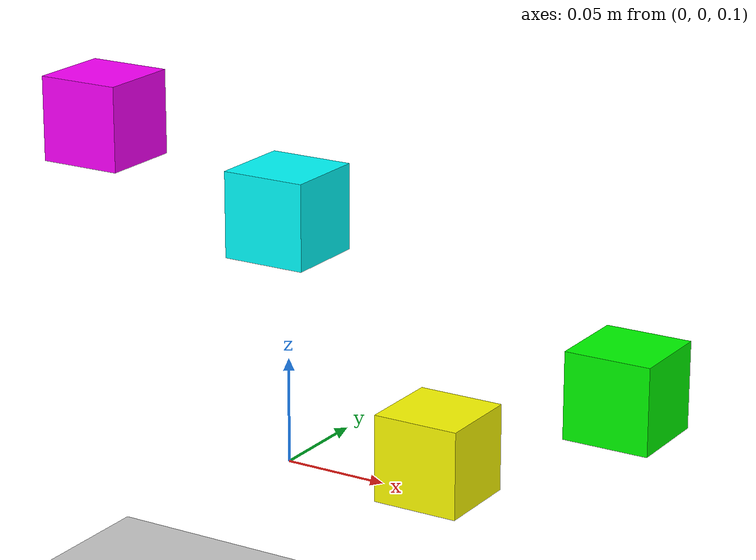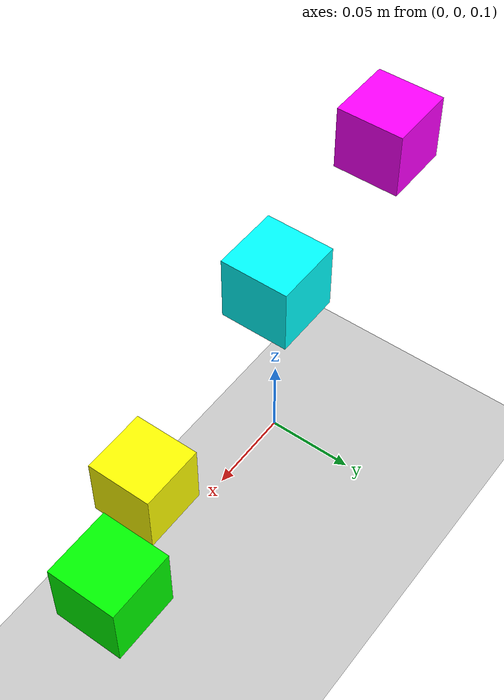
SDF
<?xml version="1.0" ?>

<sdf version="1.4">
  <world name="default">
    <include>
      <uri>model://ground_plane</uri>
    </include>

    <include>
      <uri>model://sun</uri>
    </include>

    <physics type="ode">
      <real_time_update_rate>1000.0</real_time_update_rate>
      <gravity>
  0.0 0.0 -9.81
      </gravity>
    </physics>

    <!-- x>0 to put on fore-fingers. y<0 to put on finger1. -->
    <model name="ball_yellow">
      <link name="link">
        <!-- z position is radius + thickness of ReFlex Hand, so ball can rest
               on top of fingers.
             +x is off-center towards fore-fingers
             +y is off-center towards finger 1 -->
        <pose>0.09 -0.02 0.13 0 0 0</pose>

        <collision name="ball_yellow_collision">
          <geometry>
            <box>
              <size>0.04 0.04 0.04</size>
            </box>
          </geometry>
        </collision>

        <visual name="visual">
          <geometry>
            <box>
              <size>0.04 0.04 0.04</size>
            </box>
          </geometry>
          <material>
            <!-- Ref: http://answers.gazebosim.org/question/3336/change-color-of-models/ -->
            <ambient>1 1 0 1</ambient>
            <diffuse>1 1 0 1</diffuse>
            <specular>0.1 0.1 0.1 1</specular>
          </material>
        </visual>

      </link>
    </model>

    <!-- x>0 to put on fore-fingers. y>0 to put on finger2. -->
    <model name="ball_green">
      <link name="link">
        <pose>0.16 0.02 0.16 0 0 0</pose>

        <collision name="ball_green_collision">
          <geometry>
            <box>
              <size>0.04 0.04 0.04</size>
            </box>
          </geometry>
        </collision>

        <visual name="visual">
          <geometry>
            <box>
              <size>0.04 0.04 0.04</size>
            </box>
          </geometry>
          <material>
            <ambient>0 1 0 1</ambient>
            <diffuse>0 1 0 1</diffuse>
            <specular>0.1 0.1 0.1 1</specular>
          </material>
        </visual>
      </link>
    </model>

    <!-- x<0 to put on finger3 (thumb). y=0 to center. -->
    <model name="ball_magenta">
      <link name="link">
        <pose>-0.1 0 0.25 0 0 0</pose>

        <collision name="ball_magenta_collision">
          <geometry>
            <box>
              <size>0.04 0.04 0.04</size>
            </box>
          </geometry>
        </collision>

        <visual name="visual">
          <geometry>
            <box>
              <size>0.04 0.04 0.04</size>
            </box>
          </geometry>
          <material>
            <ambient>1 0 1 1</ambient>
            <diffuse>1 0 1 1</diffuse>
            <specular>0.1 0.1 0.1 1</specular>
          </material>
        </visual>
      </link>
    </model>

    <!-- x=y=z=0 to put in center of hand, where no sensors are -->
    <model name="ball_cyan">
      <link name="link">
        <pose>0 0 0.22 0 0 0</pose>

        <collision name="ball_cyan_collision">
          <geometry>
            <box>
              <size>0.04 0.04 0.04</size>
            </box>
          </geometry>
        </collision>

        <visual name="visual">
          <geometry>
            <box>
              <size>0.04 0.04 0.04</size>
            </box>
          </geometry>
          <material>
            <ambient>0 1 1 1</ambient>
            <diffuse>0 1 1 1</diffuse>
            <specular>0.1 0.1 0.1 1</specular>
          </material>
        </visual>

      </link>
    </model>

  </world>
</sdf>
